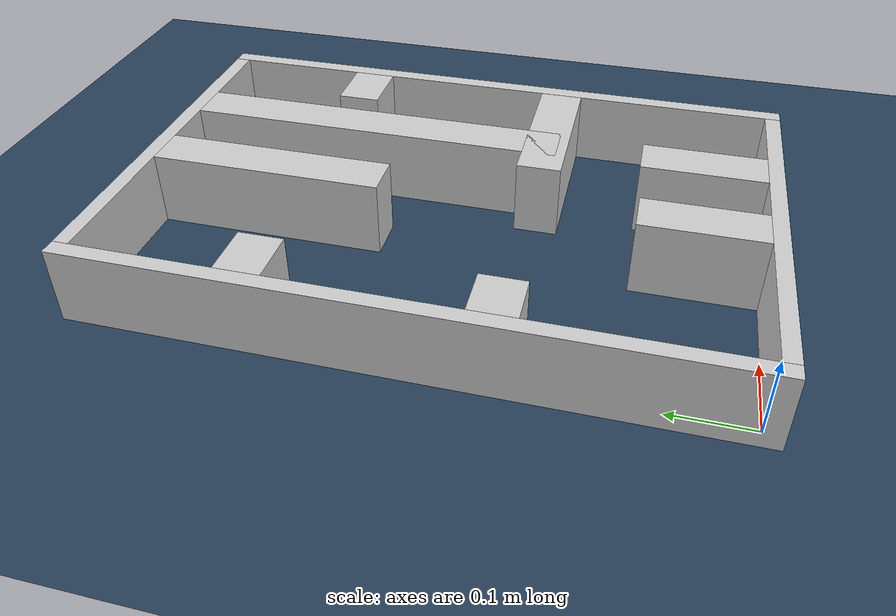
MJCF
<?xml version="1.0" ?>
<mujoco model="generated_real_template">
  <compiler angle="degree"/>
  <option timestep="0.002" integrator="implicitfast" iterations="100" cone="elliptic"/>
  <default>
    <geom density="1"/>
  </default>
  <asset>
    <texture builtin="gradient" height="3072" rgb1="0.3 0.5 0.7" rgb2="0 0 0" type="skybox" width="512"/>
    <texture builtin="checker" height="300" mark="edge" markrgb="0.8 0.8 0.8" name="groundplane" rgb1="0.2 0.3 0.4" rgb2="0.1 0.2 0.3" type="2d" width="300"/>
    <material name="groundplane" reflectance="0.2" texrepeat="5 5" texture="groundplane" texuniform="true"/>
  </asset>
  <worldbody>
    <light dir="0 0 -1" directional="true" pos="0 0 1.5"/>
    <geom name="floor" type="plane" condim="4" friction="0.5 0.005 0.001" material="groundplane" size="0 0 0.05"/>
    <body name="walls">
      <geom name="wall_boundary_left" type="box" condim="4" friction="1.0 0.005 0.0001" rgba="0.8 0.8 0.8 1" pos="-0.010000 0.387500 0.050000" euler="0 0 0.000000" size="0.010000 0.407500 0.050000"/>
      <geom name="wall_boundary_right" type="box" condim="4" friction="1.0 0.005 0.0001" rgba="0.8 0.8 0.8 1" pos="0.500000 0.387500 0.050000" euler="0 0 0.000000" size="0.010000 0.407500 0.050000"/>
      <geom name="wall_boundary_bottom" type="box" condim="4" friction="1.0 0.005 0.0001" rgba="0.8 0.8 0.8 1" pos="0.245000 -0.010000 0.050000" euler="0 0 0.000000" size="0.245000 0.010000 0.050000"/>
      <geom name="wall_boundary_top" type="box" condim="4" friction="1.0 0.005 0.0001" rgba="0.8 0.8 0.8 1" pos="0.245000 0.785000 0.050000" euler="0 0 0.000000" size="0.245000 0.010000 0.050000"/>
      <geom name="wall_inner_1_1" type="box" condim="4" friction="1.0 0.005 0.0001" rgba="0.8 0.8 0.8 1" pos="0.030329 0.284741 0.050000" euler="0 0 0.000000" size="0.030329 0.028500 0.050000"/>
      <geom name="wall_inner_1_2" type="box" condim="4" friction="1.0 0.005 0.0001" rgba="0.8 0.8 0.8 1" pos="0.388313 0.284741 0.050000" euler="0 0 0.000000" size="0.101687 0.028500 0.050000"/>
      <geom name="wall_inner_2_1" type="box" condim="4" friction="1.0 0.005 0.0001" rgba="0.8 0.8 0.8 1" pos="0.033751 0.569261 0.050000" euler="0 0 0.000000" size="0.033751 0.028500 0.050000"/>
      <geom name="wall_inner_2_2" type="box" condim="4" friction="1.0 0.005 0.0001" rgba="0.8 0.8 0.8 1" pos="0.450801 0.569261 0.050000" euler="0 0 0.000000" size="0.039199 0.028500 0.050000"/>
      <geom name="wall_inner_3_1" type="box" condim="4" friction="1.0 0.005 0.0001" rgba="0.8 0.8 0.8 1" pos="0.350490 0.079601 0.050000" euler="0 0 90.000000" size="0.079601 0.028500 0.050000"/>
      <geom name="wall_inner_3_2" type="box" condim="4" friction="1.0 0.005 0.0001" rgba="0.8 0.8 0.8 1" pos="0.350490 0.522007 0.050000" euler="0 0 90.000000" size="0.252993 0.028500 0.050000"/>
      <geom name="wall_inner_4_1" type="box" condim="4" friction="1.0 0.005 0.0001" rgba="0.8 0.8 0.8 1" pos="0.221756 0.077175 0.050000" euler="0 0 90.000000" size="0.077175 0.028500 0.050000"/>
      <geom name="wall_inner_4_2" type="box" condim="4" friction="1.0 0.005 0.0001" rgba="0.8 0.8 0.8 1" pos="0.221756 0.623275 0.050000" euler="0 0 90.000000" size="0.151725 0.028500 0.050000"/>
    </body>
  </worldbody>
</mujoco>
